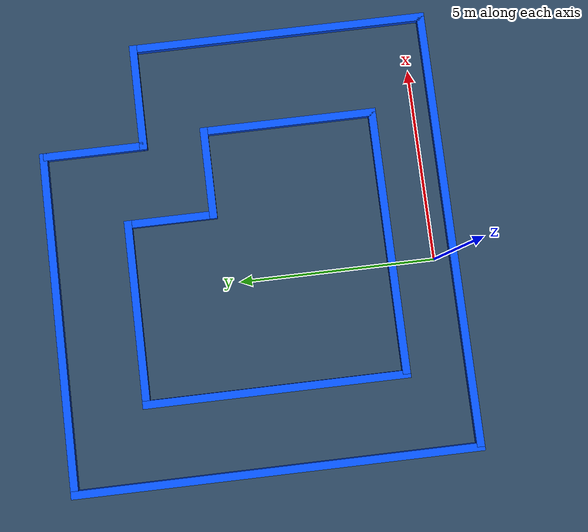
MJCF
<mujoco>
  <statistic center="0 0 0.1" extent="0.6" meansize=".05"/>
  <visual>
    <headlight diffuse="0.6 0.6 0.6" ambient="0.3 0.3 0.3" specular="0 0 0"/>
    <rgba haze="0.15 0.25 0.35 1"/>
    <global azimuth="-20" elevation="-20" ellipsoidinertia="true"/>
  </visual>

  <asset>
    <texture type="skybox" builtin="gradient" rgb1="0.3 0.5 0.7" rgb2="0 0 0" width="512" height="3072"/>
    <texture type="2d" name="groundplane" builtin="checker" mark="edge" rgb1="0.2 0.3 0.4" rgb2="0.1 0.2 0.3"
      markrgb="0.8 0.8 0.8" width="300" height="300"/>
    <material name="groundplane" texture="groundplane" texuniform="true" texrepeat="5 5" reflectance="0.2"/>
  </asset>

  <worldbody>
    <light pos="0 0 1.5" dir="0 0 -1" directional="true"/>
    <geom name="floor" size="0 0 0.05" type="plane" material="groundplane"/>

    <geom type="box" size="3.4 0.1 0.1" rgba="0.01 .3 1 1" pos= "0.6 1.1 0.05" density = "5000"/>
    <geom type="box" size="0.1 2.2 0.1" rgba="0.01 .3 1 1" pos= "4.0 3.2 0.05" density = "5000"/>
    <geom type="box" size="1.2 0.1 0.1" rgba="0.01 .3 1 1" pos= "2.9 5.5 0.05" density = "5000"/>
    <geom type="box" size="0.1 1.0 0.1" rgba="0.01 .3 1 1" pos= "1.8 6.6 0.05" density = "5000"/>
    <geom type="box" size="2.3 0.1 0.1" rgba="0.01 .3 1 1" pos= "-0.4 7.7 0.05" density = "5000"/>
    <geom type="box" size="0.1 3.4 0.1" rgba="0.01 .3 1 1" pos= "-2.8 4.4 0.05" density = "5000"/>

    <geom type="box" size="5.6 0.1 0.1" rgba="0.01 .3 1 1" pos= "0.8 -0.5 0.05" density = "5000"/>
    <geom type="box" size="0.1 3.8 0.1" rgba="0.01 .3 1 1" pos= "6.4 3.2 0.05"  density = "5000"/>
    <geom type="box" size="1.4 0.1 0.1" rgba="0.01 .3 1 1" pos= "5.1 7.1 0.05"  density = "5000"/>
    <geom type="box" size="0.1 1.3 0.1" rgba="0.01 .3 1 1" pos= "3.8 8.4 0.05"  density = "5000"/>
    <geom type="box" size="4.3 0.1 0.1" rgba="0.01 .3 1 1" pos= "-0.4 9.7 0.05" density = "5000"/>
    <geom type="box" size="0.1 5.2 0.1" rgba="0.01 .3 1 1" pos= "-4.8 4.6 0.05" density = "5000"/>

  </worldbody>

</mujoco>
